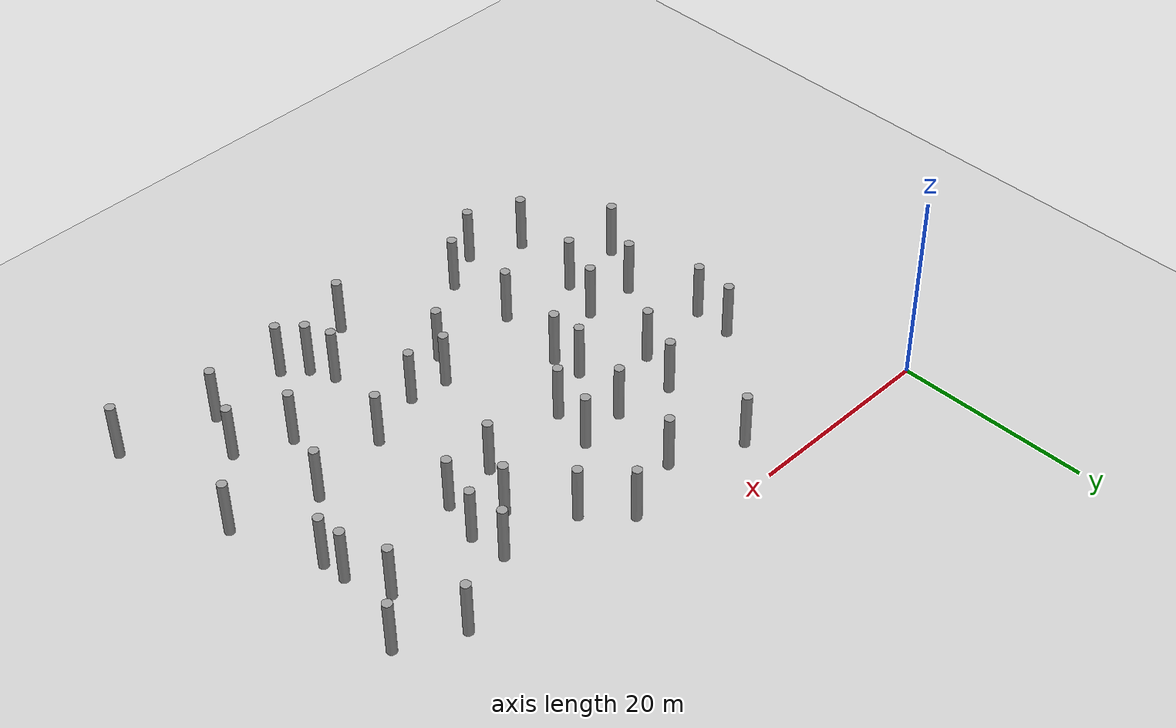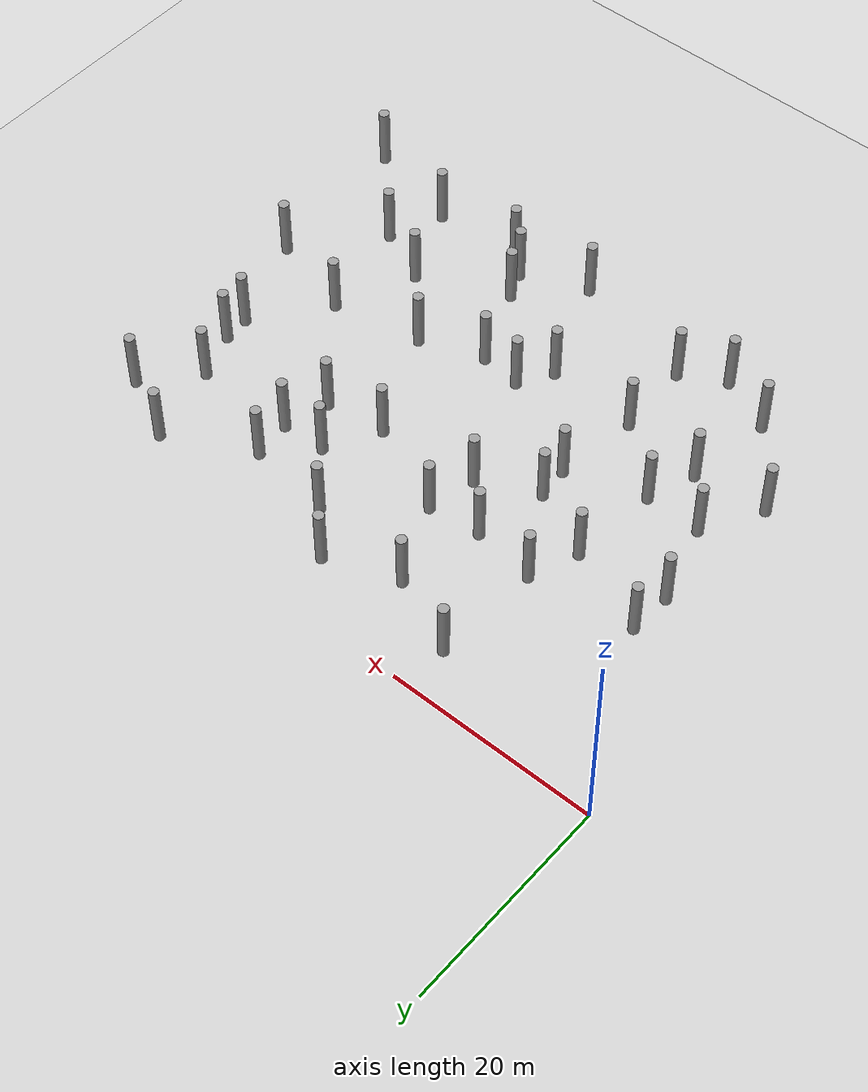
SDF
<sdf version="1.5">
 <world name="circle">
  <model name="ground">
   <static>1</static>
   <link name="link">
    <collision name="collision">
     <geometry><plane><normal>0 0 1</normal><size>100 100</size></plane></geometry>
     <surface><friction><ode><mu>100</mu><mu2>50</mu2></ode></friction></surface>
    </collision>
    <visual name="visual">
     <cast_shadows>0</cast_shadows>
     <geometry><plane><normal>0 0 1</normal><size>100 100</size></plane></geometry>
     <material>
      <script><uri>file://media/materials/scripts/gazebo.material</uri><name>Gazebo/Grey</name></script>
     </material>
    </visual>
    <velocity_decay><linear>0</linear><angular>0</angular></velocity_decay>
   </link>
  </model>
  <model name="unit_cylinder_0">
   <pose>12.6124145216 -40.3023331547 3 3e-06 4e-06 -0</pose>
   <static>1</static>
   <self_collide>1</self_collide>
   <link name="link">
    <inertial>
     <mass>1</mass>
     <inertia><ixx>0.145833</ixx><ixy>0</ixy><ixz>0</ixz><iyy>0.145833</iyy><iyz>0</iyz><izz>0.125</izz></inertia>
    </inertial>
    <collision name="collision">
     <geometry><cylinder><radius>0.5</radius><length>6</length></cylinder></geometry>
    </collision>
    <visual name="visual">
     <geometry><cylinder><radius>0.5</radius><length>6</length></cylinder></geometry>
     <material>
      <script><name>Gazebo/Grey</name><uri>file://media/materials/scripts/gazebo.material</uri></script>
     </material>
    </visual>
    <collision name="cyl_collision">
     <geometry><cylinder><radius>0.5</radius><length>6</length></cylinder></geometry>
    </collision>
    <sensor name="my_contact" type="contact">
     <contact><collision>cyl_collision</collision></contact>
     <update_rate>5</update_rate>
    </sensor>
   </link>
  </model>
  <model name="unit_cylinder_1">
   <pose>6.96128146057 -32.9465415072 3 3e-06 4e-06 -0</pose>
   <static>1</static>
   <self_collide>1</self_collide>
   <link name="link">
    <inertial>
     <mass>1</mass>
     <inertia><ixx>0.145833</ixx><ixy>0</ixy><ixz>0</ixz><iyy>0.145833</iyy><iyz>0</iyz><izz>0.125</izz></inertia>
    </inertial>
    <collision name="collision">
     <geometry><cylinder><radius>0.5</radius><length>6</length></cylinder></geometry>
    </collision>
    <visual name="visual">
     <geometry><cylinder><radius>0.5</radius><length>6</length></cylinder></geometry>
     <material>
      <script><name>Gazebo/Grey</name><uri>file://media/materials/scripts/gazebo.material</uri></script>
     </material>
    </visual>
    <collision name="cyl_collision">
     <geometry><cylinder><radius>0.5</radius><length>6</length></cylinder></geometry>
    </collision>
    <sensor name="my_contact" type="contact">
     <contact><collision>cyl_collision</collision></contact>
     <update_rate>5</update_rate>
    </sensor>
   </link>
  </model>
  <model name="unit_cylinder_2">
   <pose>10.0673096309 -27.51107133 3 3e-06 4e-06 -0</pose>
   <static>1</static>
   <self_collide>1</self_collide>
   <link name="link">
    <inertial>
     <mass>1</mass>
     <inertia><ixx>0.145833</ixx><ixy>0</ixy><ixz>0</ixz><iyy>0.145833</iyy><iyz>0</iyz><izz>0.125</izz></inertia>
    </inertial>
    <collision name="collision">
     <geometry><cylinder><radius>0.5</radius><length>6</length></cylinder></geometry>
    </collision>
    <visual name="visual">
     <geometry><cylinder><radius>0.5</radius><length>6</length></cylinder></geometry>
     <material>
      <script><name>Gazebo/Grey</name><uri>file://media/materials/scripts/gazebo.material</uri></script>
     </material>
    </visual>
    <collision name="cyl_collision">
     <geometry><cylinder><radius>0.5</radius><length>6</length></cylinder></geometry>
    </collision>
    <sensor name="my_contact" type="contact">
     <contact><collision>cyl_collision</collision></contact>
     <update_rate>5</update_rate>
    </sensor>
   </link>
  </model>
  <model name="unit_cylinder_3">
   <pose>7.85500372777 -20.1338937602 3 3e-06 4e-06 -0</pose>
   <static>1</static>
   <self_collide>1</self_collide>
   <link name="link">
    <inertial>
     <mass>1</mass>
     <inertia><ixx>0.145833</ixx><ixy>0</ixy><ixz>0</ixz><iyy>0.145833</iyy><iyz>0</iyz><izz>0.125</izz></inertia>
    </inertial>
    <collision name="collision">
     <geometry><cylinder><radius>0.5</radius><length>6</length></cylinder></geometry>
    </collision>
    <visual name="visual">
     <geometry><cylinder><radius>0.5</radius><length>6</length></cylinder></geometry>
     <material>
      <script><name>Gazebo/Grey</name><uri>file://media/materials/scripts/gazebo.material</uri></script>
     </material>
    </visual>
    <collision name="cyl_collision">
     <geometry><cylinder><radius>0.5</radius><length>6</length></cylinder></geometry>
    </collision>
    <sensor name="my_contact" type="contact">
     <contact><collision>cyl_collision</collision></contact>
     <update_rate>5</update_rate>
    </sensor>
   </link>
  </model>
  <model name="unit_cylinder_4">
   <pose>8.0691187414 -16.0641193641 3 3e-06 4e-06 -0</pose>
   <static>1</static>
   <self_collide>1</self_collide>
   <link name="link">
    <inertial>
     <mass>1</mass>
     <inertia><ixx>0.145833</ixx><ixy>0</ixy><ixz>0</ixz><iyy>0.145833</iyy><iyz>0</iyz><izz>0.125</izz></inertia>
    </inertial>
    <collision name="collision">
     <geometry><cylinder><radius>0.5</radius><length>6</length></cylinder></geometry>
    </collision>
    <visual name="visual">
     <geometry><cylinder><radius>0.5</radius><length>6</length></cylinder></geometry>
     <material>
      <script><name>Gazebo/Grey</name><uri>file://media/materials/scripts/gazebo.material</uri></script>
     </material>
    </visual>
    <collision name="cyl_collision">
     <geometry><cylinder><radius>0.5</radius><length>6</length></cylinder></geometry>
    </collision>
    <sensor name="my_contact" type="contact">
     <contact><collision>cyl_collision</collision></contact>
     <update_rate>5</update_rate>
    </sensor>
   </link>
  </model>
  <model name="unit_cylinder_12">
   <pose>17.7732628708 -42.5833735378 3 3e-06 4e-06 -0</pose>
   <static>1</static>
   <self_collide>1</self_collide>
   <link name="link">
    <inertial>
     <mass>1</mass>
     <inertia><ixx>0.145833</ixx><ixy>0</ixy><ixz>0</ixz><iyy>0.145833</iyy><iyz>0</iyz><izz>0.125</izz></inertia>
    </inertial>
    <collision name="collision">
     <geometry><cylinder><radius>0.5</radius><length>6</length></cylinder></geometry>
    </collision>
    <visual name="visual">
     <geometry><cylinder><radius>0.5</radius><length>6</length></cylinder></geometry>
     <material>
      <script><name>Gazebo/Grey</name><uri>file://media/materials/scripts/gazebo.material</uri></script>
     </material>
    </visual>
    <collision name="cyl_collision">
     <geometry><cylinder><radius>0.5</radius><length>6</length></cylinder></geometry>
    </collision>
    <sensor name="my_contact" type="contact">
     <contact><collision>cyl_collision</collision></contact>
     <update_rate>5</update_rate>
    </sensor>
   </link>
  </model>
  <model name="unit_cylinder_13">
   <pose>13.8132217243 -32.102792748 3 3e-06 4e-06 -0</pose>
   <static>1</static>
   <self_collide>1</self_collide>
   <link name="link">
    <inertial>
     <mass>1</mass>
     <inertia><ixx>0.145833</ixx><ixy>0</ixy><ixz>0</ixz><iyy>0.145833</iyy><iyz>0</iyz><izz>0.125</izz></inertia>
    </inertial>
    <collision name="collision">
     <geometry><cylinder><radius>0.5</radius><length>6</length></cylinder></geometry>
    </collision>
    <visual name="visual">
     <geometry><cylinder><radius>0.5</radius><length>6</length></cylinder></geometry>
     <material>
      <script><name>Gazebo/Grey</name><uri>file://media/materials/scripts/gazebo.material</uri></script>
     </material>
    </visual>
    <collision name="cyl_collision">
     <geometry><cylinder><radius>0.5</radius><length>6</length></cylinder></geometry>
    </collision>
    <sensor name="my_contact" type="contact">
     <contact><collision>cyl_collision</collision></contact>
     <update_rate>5</update_rate>
    </sensor>
   </link>
  </model>
  <model name="unit_cylinder_14">
   <pose>15.4106913323 -27.5746957721 3 3e-06 4e-06 -0</pose>
   <static>1</static>
   <self_collide>1</self_collide>
   <link name="link">
    <inertial>
     <mass>1</mass>
     <inertia><ixx>0.145833</ixx><ixy>0</ixy><ixz>0</ixz><iyy>0.145833</iyy><iyz>0</iyz><izz>0.125</izz></inertia>
    </inertial>
    <collision name="collision">
     <geometry><cylinder><radius>0.5</radius><length>6</length></cylinder></geometry>
    </collision>
    <visual name="visual">
     <geometry><cylinder><radius>0.5</radius><length>6</length></cylinder></geometry>
     <material>
      <script><name>Gazebo/Grey</name><uri>file://media/materials/scripts/gazebo.material</uri></script>
     </material>
    </visual>
    <collision name="cyl_collision">
     <geometry><cylinder><radius>0.5</radius><length>6</length></cylinder></geometry>
    </collision>
    <sensor name="my_contact" type="contact">
     <contact><collision>cyl_collision</collision></contact>
     <update_rate>5</update_rate>
    </sensor>
   </link>
  </model>
  <model name="unit_cylinder_15">
   <pose>16.1578896865 -19.113521778 3 3e-06 4e-06 -0</pose>
   <static>1</static>
   <self_collide>1</self_collide>
   <link name="link">
    <inertial>
     <mass>1</mass>
     <inertia><ixx>0.145833</ixx><ixy>0</ixy><ixz>0</ixz><iyy>0.145833</iyy><iyz>0</iyz><izz>0.125</izz></inertia>
    </inertial>
    <collision name="collision">
     <geometry><cylinder><radius>0.5</radius><length>6</length></cylinder></geometry>
    </collision>
    <visual name="visual">
     <geometry><cylinder><radius>0.5</radius><length>6</length></cylinder></geometry>
     <material>
      <script><name>Gazebo/Grey</name><uri>file://media/materials/scripts/gazebo.material</uri></script>
     </material>
    </visual>
    <collision name="cyl_collision">
     <geometry><cylinder><radius>0.5</radius><length>6</length></cylinder></geometry>
    </collision>
    <sensor name="my_contact" type="contact">
     <contact><collision>cyl_collision</collision></contact>
     <update_rate>5</update_rate>
    </sensor>
   </link>
  </model>
  <model name="unit_cylinder_16">
   <pose>17.9182829641 -14.5445670204 3 3e-06 4e-06 -0</pose>
   <static>1</static>
   <self_collide>1</self_collide>
   <link name="link">
    <inertial>
     <mass>1</mass>
     <inertia><ixx>0.145833</ixx><ixy>0</ixy><ixz>0</ixz><iyy>0.145833</iyy><iyz>0</iyz><izz>0.125</izz></inertia>
    </inertial>
    <collision name="collision">
     <geometry><cylinder><radius>0.5</radius><length>6</length></cylinder></geometry>
    </collision>
    <visual name="visual">
     <geometry><cylinder><radius>0.5</radius><length>6</length></cylinder></geometry>
     <material>
      <script><name>Gazebo/Grey</name><uri>file://media/materials/scripts/gazebo.material</uri></script>
     </material>
    </visual>
    <collision name="cyl_collision">
     <geometry><cylinder><radius>0.5</radius><length>6</length></cylinder></geometry>
    </collision>
    <sensor name="my_contact" type="contact">
     <contact><collision>cyl_collision</collision></contact>
     <update_rate>5</update_rate>
    </sensor>
   </link>
  </model>
  <model name="unit_cylinder_17">
   <pose>18.4843208202 -4.38847078077 3 3e-06 4e-06 -0</pose>
   <static>1</static>
   <self_collide>1</self_collide>
   <link name="link">
    <inertial>
     <mass>1</mass>
     <inertia><ixx>0.145833</ixx><ixy>0</ixy><ixz>0</ixz><iyy>0.145833</iyy><iyz>0</iyz><izz>0.125</izz></inertia>
    </inertial>
    <collision name="collision">
     <geometry><cylinder><radius>0.5</radius><length>6</length></cylinder></geometry>
    </collision>
    <visual name="visual">
     <geometry><cylinder><radius>0.5</radius><length>6</length></cylinder></geometry>
     <material>
      <script><name>Gazebo/Grey</name><uri>file://media/materials/scripts/gazebo.material</uri></script>
     </material>
    </visual>
    <collision name="cyl_collision">
     <geometry><cylinder><radius>0.5</radius><length>6</length></cylinder></geometry>
    </collision>
    <sensor name="my_contact" type="contact">
     <contact><collision>cyl_collision</collision></contact>
     <update_rate>5</update_rate>
    </sensor>
   </link>
  </model>
  <model name="unit_cylinder_24">
   <pose>21.9065971351 -40.3572031227 3 3e-06 4e-06 -0</pose>
   <static>1</static>
   <self_collide>1</self_collide>
   <link name="link">
    <inertial>
     <mass>1</mass>
     <inertia><ixx>0.145833</ixx><ixy>0</ixy><ixz>0</ixz><iyy>0.145833</iyy><iyz>0</iyz><izz>0.125</izz></inertia>
    </inertial>
    <collision name="collision">
     <geometry><cylinder><radius>0.5</radius><length>6</length></cylinder></geometry>
    </collision>
    <visual name="visual">
     <geometry><cylinder><radius>0.5</radius><length>6</length></cylinder></geometry>
     <material>
      <script><name>Gazebo/Grey</name><uri>file://media/materials/scripts/gazebo.material</uri></script>
     </material>
    </visual>
    <collision name="cyl_collision">
     <geometry><cylinder><radius>0.5</radius><length>6</length></cylinder></geometry>
    </collision>
    <sensor name="my_contact" type="contact">
     <contact><collision>cyl_collision</collision></contact>
     <update_rate>5</update_rate>
    </sensor>
   </link>
  </model>
  <model name="unit_cylinder_25">
   <pose>21.5926735893 -33.0451283074 3 3e-06 4e-06 -0</pose>
   <static>1</static>
   <self_collide>1</self_collide>
   <link name="link">
    <inertial>
     <mass>1</mass>
     <inertia><ixx>0.145833</ixx><ixy>0</ixy><ixz>0</ixz><iyy>0.145833</iyy><iyz>0</iyz><izz>0.125</izz></inertia>
    </inertial>
    <collision name="collision">
     <geometry><cylinder><radius>0.5</radius><length>6</length></cylinder></geometry>
    </collision>
    <visual name="visual">
     <geometry><cylinder><radius>0.5</radius><length>6</length></cylinder></geometry>
     <material>
      <script><name>Gazebo/Grey</name><uri>file://media/materials/scripts/gazebo.material</uri></script>
     </material>
    </visual>
    <collision name="cyl_collision">
     <geometry><cylinder><radius>0.5</radius><length>6</length></cylinder></geometry>
    </collision>
    <sensor name="my_contact" type="contact">
     <contact><collision>cyl_collision</collision></contact>
     <update_rate>5</update_rate>
    </sensor>
   </link>
  </model>
  <model name="unit_cylinder_26">
   <pose>22.7206121784 -25.1614234946 3 3e-06 4e-06 -0</pose>
   <static>1</static>
   <self_collide>1</self_collide>
   <link name="link">
    <inertial>
     <mass>1</mass>
     <inertia><ixx>0.145833</ixx><ixy>0</ixy><ixz>0</ixz><iyy>0.145833</iyy><iyz>0</iyz><izz>0.125</izz></inertia>
    </inertial>
    <collision name="collision">
     <geometry><cylinder><radius>0.5</radius><length>6</length></cylinder></geometry>
    </collision>
    <visual name="visual">
     <geometry><cylinder><radius>0.5</radius><length>6</length></cylinder></geometry>
     <material>
      <script><name>Gazebo/Grey</name><uri>file://media/materials/scripts/gazebo.material</uri></script>
     </material>
    </visual>
    <collision name="cyl_collision">
     <geometry><cylinder><radius>0.5</radius><length>6</length></cylinder></geometry>
    </collision>
    <sensor name="my_contact" type="contact">
     <contact><collision>cyl_collision</collision></contact>
     <update_rate>5</update_rate>
    </sensor>
   </link>
  </model>
  <model name="unit_cylinder_27">
   <pose>22.4219778398 -22.0793265807 3 3e-06 4e-06 -0</pose>
   <static>1</static>
   <self_collide>1</self_collide>
   <link name="link">
    <inertial>
     <mass>1</mass>
     <inertia><ixx>0.145833</ixx><ixy>0</ixy><ixz>0</ixz><iyy>0.145833</iyy><iyz>0</iyz><izz>0.125</izz></inertia>
    </inertial>
    <collision name="collision">
     <geometry><cylinder><radius>0.5</radius><length>6</length></cylinder></geometry>
    </collision>
    <visual name="visual">
     <geometry><cylinder><radius>0.5</radius><length>6</length></cylinder></geometry>
     <material>
      <script><name>Gazebo/Grey</name><uri>file://media/materials/scripts/gazebo.material</uri></script>
     </material>
    </visual>
    <collision name="cyl_collision">
     <geometry><cylinder><radius>0.5</radius><length>6</length></cylinder></geometry>
    </collision>
    <sensor name="my_contact" type="contact">
     <contact><collision>cyl_collision</collision></contact>
     <update_rate>5</update_rate>
    </sensor>
   </link>
  </model>
  <model name="unit_cylinder_28">
   <pose>23.8886145601 -15.3643983245 3 3e-06 4e-06 -0</pose>
   <static>1</static>
   <self_collide>1</self_collide>
   <link name="link">
    <inertial>
     <mass>1</mass>
     <inertia><ixx>0.145833</ixx><ixy>0</ixy><ixz>0</ixz><iyy>0.145833</iyy><iyz>0</iyz><izz>0.125</izz></inertia>
    </inertial>
    <collision name="collision">
     <geometry><cylinder><radius>0.5</radius><length>6</length></cylinder></geometry>
    </collision>
    <visual name="visual">
     <geometry><cylinder><radius>0.5</radius><length>6</length></cylinder></geometry>
     <material>
      <script><name>Gazebo/Grey</name><uri>file://media/materials/scripts/gazebo.material</uri></script>
     </material>
    </visual>
    <collision name="cyl_collision">
     <geometry><cylinder><radius>0.5</radius><length>6</length></cylinder></geometry>
    </collision>
    <sensor name="my_contact" type="contact">
     <contact><collision>cyl_collision</collision></contact>
     <update_rate>5</update_rate>
    </sensor>
   </link>
  </model>
  <model name="unit_cylinder_29">
   <pose>25.5359010917 -7.43061325953 3 3e-06 4e-06 -0</pose>
   <static>1</static>
   <self_collide>1</self_collide>
   <link name="link">
    <inertial>
     <mass>1</mass>
     <inertia><ixx>0.145833</ixx><ixy>0</ixy><ixz>0</ixz><iyy>0.145833</iyy><iyz>0</iyz><izz>0.125</izz></inertia>
    </inertial>
    <collision name="collision">
     <geometry><cylinder><radius>0.5</radius><length>6</length></cylinder></geometry>
    </collision>
    <visual name="visual">
     <geometry><cylinder><radius>0.5</radius><length>6</length></cylinder></geometry>
     <material>
      <script><name>Gazebo/Grey</name><uri>file://media/materials/scripts/gazebo.material</uri></script>
     </material>
    </visual>
    <collision name="cyl_collision">
     <geometry><cylinder><radius>0.5</radius><length>6</length></cylinder></geometry>
    </collision>
    <sensor name="my_contact" type="contact">
     <contact><collision>cyl_collision</collision></contact>
     <update_rate>5</update_rate>
    </sensor>
   </link>
  </model>
  <model name="unit_cylinder_36">
   <pose>34.1373962909 -43.4308068762 3 3e-06 4e-06 -0</pose>
   <static>1</static>
   <self_collide>1</self_collide>
   <link name="link">
    <inertial>
     <mass>1</mass>
     <inertia><ixx>0.145833</ixx><ixy>0</ixy><ixz>0</ixz><iyy>0.145833</iyy><iyz>0</iyz><izz>0.125</izz></inertia>
    </inertial>
    <collision name="collision">
     <geometry><cylinder><radius>0.5</radius><length>6</length></cylinder></geometry>
    </collision>
    <visual name="visual">
     <geometry><cylinder><radius>0.5</radius><length>6</length></cylinder></geometry>
     <material>
      <script><name>Gazebo/Grey</name><uri>file://media/materials/scripts/gazebo.material</uri></script>
     </material>
    </visual>
    <collision name="cyl_collision">
     <geometry><cylinder><radius>0.5</radius><length>6</length></cylinder></geometry>
    </collision>
    <sensor name="my_contact" type="contact">
     <contact><collision>cyl_collision</collision></contact>
     <update_rate>5</update_rate>
    </sensor>
   </link>
  </model>
  <model name="unit_cylinder_37">
   <pose>30.2342891506 -33.4831192548 3 3e-06 4e-06 -0</pose>
   <static>1</static>
   <self_collide>1</self_collide>
   <link name="link">
    <inertial>
     <mass>1</mass>
     <inertia><ixx>0.145833</ixx><ixy>0</ixy><ixz>0</ixz><iyy>0.145833</iyy><iyz>0</iyz><izz>0.125</izz></inertia>
    </inertial>
    <collision name="collision">
     <geometry><cylinder><radius>0.5</radius><length>6</length></cylinder></geometry>
    </collision>
    <visual name="visual">
     <geometry><cylinder><radius>0.5</radius><length>6</length></cylinder></geometry>
     <material>
      <script><name>Gazebo/Grey</name><uri>file://media/materials/scripts/gazebo.material</uri></script>
     </material>
    </visual>
    <collision name="cyl_collision">
     <geometry><cylinder><radius>0.5</radius><length>6</length></cylinder></geometry>
    </collision>
    <sensor name="my_contact" type="contact">
     <contact><collision>cyl_collision</collision></contact>
     <update_rate>5</update_rate>
    </sensor>
   </link>
  </model>
  <model name="unit_cylinder_38">
   <pose>32.1514204454 -30.3629129867 3 3e-06 4e-06 -0</pose>
   <static>1</static>
   <self_collide>1</self_collide>
   <link name="link">
    <inertial>
     <mass>1</mass>
     <inertia><ixx>0.145833</ixx><ixy>0</ixy><ixz>0</ixz><iyy>0.145833</iyy><iyz>0</iyz><izz>0.125</izz></inertia>
    </inertial>
    <collision name="collision">
     <geometry><cylinder><radius>0.5</radius><length>6</length></cylinder></geometry>
    </collision>
    <visual name="visual">
     <geometry><cylinder><radius>0.5</radius><length>6</length></cylinder></geometry>
     <material>
      <script><name>Gazebo/Grey</name><uri>file://media/materials/scripts/gazebo.material</uri></script>
     </material>
    </visual>
    <collision name="cyl_collision">
     <geometry><cylinder><radius>0.5</radius><length>6</length></cylinder></geometry>
    </collision>
    <sensor name="my_contact" type="contact">
     <contact><collision>cyl_collision</collision></contact>
     <update_rate>5</update_rate>
    </sensor>
   </link>
  </model>
  <model name="unit_cylinder_39">
   <pose>27.8642569535 -19.4129540567 3 3e-06 4e-06 -0</pose>
   <static>1</static>
   <self_collide>1</self_collide>
   <link name="link">
    <inertial>
     <mass>1</mass>
     <inertia><ixx>0.145833</ixx><ixy>0</ixy><ixz>0</ixz><iyy>0.145833</iyy><iyz>0</iyz><izz>0.125</izz></inertia>
    </inertial>
    <collision name="collision">
     <geometry><cylinder><radius>0.5</radius><length>6</length></cylinder></geometry>
    </collision>
    <visual name="visual">
     <geometry><cylinder><radius>0.5</radius><length>6</length></cylinder></geometry>
     <material>
      <script><name>Gazebo/Grey</name><uri>file://media/materials/scripts/gazebo.material</uri></script>
     </material>
    </visual>
    <collision name="cyl_collision">
     <geometry><cylinder><radius>0.5</radius><length>6</length></cylinder></geometry>
    </collision>
    <sensor name="my_contact" type="contact">
     <contact><collision>cyl_collision</collision></contact>
     <update_rate>5</update_rate>
    </sensor>
   </link>
  </model>
  <model name="unit_cylinder_40">
   <pose>28.870065888 -14.7826463186 3 3e-06 4e-06 -0</pose>
   <static>1</static>
   <self_collide>1</self_collide>
   <link name="link">
    <inertial>
     <mass>1</mass>
     <inertia><ixx>0.145833</ixx><ixy>0</ixy><ixz>0</ixz><iyy>0.145833</iyy><iyz>0</iyz><izz>0.125</izz></inertia>
    </inertial>
    <collision name="collision">
     <geometry><cylinder><radius>0.5</radius><length>6</length></cylinder></geometry>
    </collision>
    <visual name="visual">
     <geometry><cylinder><radius>0.5</radius><length>6</length></cylinder></geometry>
     <material>
      <script><name>Gazebo/Grey</name><uri>file://media/materials/scripts/gazebo.material</uri></script>
     </material>
    </visual>
    <collision name="cyl_collision">
     <geometry><cylinder><radius>0.5</radius><length>6</length></cylinder></geometry>
    </collision>
    <sensor name="my_contact" type="contact">
     <contact><collision>cyl_collision</collision></contact>
     <update_rate>5</update_rate>
    </sensor>
   </link>
  </model>
  <model name="unit_cylinder_41">
   <pose>32.3108665527 -4.94031563436 3 3e-06 4e-06 -0</pose>
   <static>1</static>
   <self_collide>1</self_collide>
   <link name="link">
    <inertial>
     <mass>1</mass>
     <inertia><ixx>0.145833</ixx><ixy>0</ixy><ixz>0</ixz><iyy>0.145833</iyy><iyz>0</iyz><izz>0.125</izz></inertia>
    </inertial>
    <collision name="collision">
     <geometry><cylinder><radius>0.5</radius><length>6</length></cylinder></geometry>
    </collision>
    <visual name="visual">
     <geometry><cylinder><radius>0.5</radius><length>6</length></cylinder></geometry>
     <material>
      <script><name>Gazebo/Grey</name><uri>file://media/materials/scripts/gazebo.material</uri></script>
     </material>
    </visual>
    <collision name="cyl_collision">
     <geometry><cylinder><radius>0.5</radius><length>6</length></cylinder></geometry>
    </collision>
    <sensor name="my_contact" type="contact">
     <contact><collision>cyl_collision</collision></contact>
     <update_rate>5</update_rate>
    </sensor>
   </link>
  </model>
  <model name="unit_cylinder_48">
   <pose>40.2667223129 -40.781377859 3 3e-06 4e-06 -0</pose>
   <static>1</static>
   <self_collide>1</self_collide>
   <link name="link">
    <inertial>
     <mass>1</mass>
     <inertia><ixx>0.145833</ixx><ixy>0</ixy><ixz>0</ixz><iyy>0.145833</iyy><iyz>0</iyz><izz>0.125</izz></inertia>
    </inertial>
    <collision name="collision">
     <geometry><cylinder><radius>0.5</radius><length>6</length></cylinder></geometry>
    </collision>
    <visual name="visual">
     <geometry><cylinder><radius>0.5</radius><length>6</length></cylinder></geometry>
     <material>
      <script><name>Gazebo/Grey</name><uri>file://media/materials/scripts/gazebo.material</uri></script>
     </material>
    </visual>
    <collision name="cyl_collision">
     <geometry><cylinder><radius>0.5</radius><length>6</length></cylinder></geometry>
    </collision>
    <sensor name="my_contact" type="contact">
     <contact><collision>cyl_collision</collision></contact>
     <update_rate>5</update_rate>
    </sensor>
   </link>
  </model>
  <model name="unit_cylinder_49">
   <pose>39.2152993669 -38.2430716137 3 3e-06 4e-06 -0</pose>
   <static>1</static>
   <self_collide>1</self_collide>
   <link name="link">
    <inertial>
     <mass>1</mass>
     <inertia><ixx>0.145833</ixx><ixy>0</ixy><ixz>0</ixz><iyy>0.145833</iyy><iyz>0</iyz><izz>0.125</izz></inertia>
    </inertial>
    <collision name="collision">
     <geometry><cylinder><radius>0.5</radius><length>6</length></cylinder></geometry>
    </collision>
    <visual name="visual">
     <geometry><cylinder><radius>0.5</radius><length>6</length></cylinder></geometry>
     <material>
      <script><name>Gazebo/Grey</name><uri>file://media/materials/scripts/gazebo.material</uri></script>
     </material>
    </visual>
    <collision name="cyl_collision">
     <geometry><cylinder><radius>0.5</radius><length>6</length></cylinder></geometry>
    </collision>
    <sensor name="my_contact" type="contact">
     <contact><collision>cyl_collision</collision></contact>
     <update_rate>5</update_rate>
    </sensor>
   </link>
  </model>
  <model name="unit_cylinder_50">
   <pose>36.08616828 -30.8302114602 3 3e-06 4e-06 -0</pose>
   <static>1</static>
   <self_collide>1</self_collide>
   <link name="link">
    <inertial>
     <mass>1</mass>
     <inertia><ixx>0.145833</ixx><ixy>0</ixy><ixz>0</ixz><iyy>0.145833</iyy><iyz>0</iyz><izz>0.125</izz></inertia>
    </inertial>
    <collision name="collision">
     <geometry><cylinder><radius>0.5</radius><length>6</length></cylinder></geometry>
    </collision>
    <visual name="visual">
     <geometry><cylinder><radius>0.5</radius><length>6</length></cylinder></geometry>
     <material>
      <script><name>Gazebo/Grey</name><uri>file://media/materials/scripts/gazebo.material</uri></script>
     </material>
    </visual>
    <collision name="cyl_collision">
     <geometry><cylinder><radius>0.5</radius><length>6</length></cylinder></geometry>
    </collision>
    <sensor name="my_contact" type="contact">
     <contact><collision>cyl_collision</collision></contact>
     <update_rate>5</update_rate>
    </sensor>
   </link>
  </model>
  <model name="unit_cylinder_51">
   <pose>37.4538972749 -18.5958126966 3 3e-06 4e-06 -0</pose>
   <static>1</static>
   <self_collide>1</self_collide>
   <link name="link">
    <inertial>
     <mass>1</mass>
     <inertia><ixx>0.145833</ixx><ixy>0</ixy><ixz>0</ixz><iyy>0.145833</iyy><iyz>0</iyz><izz>0.125</izz></inertia>
    </inertial>
    <collision name="collision">
     <geometry><cylinder><radius>0.5</radius><length>6</length></cylinder></geometry>
    </collision>
    <visual name="visual">
     <geometry><cylinder><radius>0.5</radius><length>6</length></cylinder></geometry>
     <material>
      <script><name>Gazebo/Grey</name><uri>file://media/materials/scripts/gazebo.material</uri></script>
     </material>
    </visual>
    <collision name="cyl_collision">
     <geometry><cylinder><radius>0.5</radius><length>6</length></cylinder></geometry>
    </collision>
    <sensor name="my_contact" type="contact">
     <contact><collision>cyl_collision</collision></contact>
     <update_rate>5</update_rate>
    </sensor>
   </link>
  </model>
  <model name="unit_cylinder_52">
   <pose>40.1693962253 -13.7118214169 3 3e-06 4e-06 -0</pose>
   <static>1</static>
   <self_collide>1</self_collide>
   <link name="link">
    <inertial>
     <mass>1</mass>
     <inertia><ixx>0.145833</ixx><ixy>0</ixy><ixz>0</ixz><iyy>0.145833</iyy><iyz>0</iyz><izz>0.125</izz></inertia>
    </inertial>
    <collision name="collision">
     <geometry><cylinder><radius>0.5</radius><length>6</length></cylinder></geometry>
    </collision>
    <visual name="visual">
     <geometry><cylinder><radius>0.5</radius><length>6</length></cylinder></geometry>
     <material>
      <script><name>Gazebo/Grey</name><uri>file://media/materials/scripts/gazebo.material</uri></script>
     </material>
    </visual>
    <collision name="cyl_collision">
     <geometry><cylinder><radius>0.5</radius><length>6</length></cylinder></geometry>
    </collision>
    <sensor name="my_contact" type="contact">
     <contact><collision>cyl_collision</collision></contact>
     <update_rate>5</update_rate>
    </sensor>
   </link>
  </model>
  <model name="unit_cylinder_53">
   <pose>35.9366397154 -8.71084765176 3 3e-06 4e-06 -0</pose>
   <static>1</static>
   <self_collide>1</self_collide>
   <link name="link">
    <inertial>
     <mass>1</mass>
     <inertia><ixx>0.145833</ixx><ixy>0</ixy><ixz>0</ixz><iyy>0.145833</iyy><iyz>0</iyz><izz>0.125</izz></inertia>
    </inertial>
    <collision name="collision">
     <geometry><cylinder><radius>0.5</radius><length>6</length></cylinder></geometry>
    </collision>
    <visual name="visual">
     <geometry><cylinder><radius>0.5</radius><length>6</length></cylinder></geometry>
     <material>
      <script><name>Gazebo/Grey</name><uri>file://media/materials/scripts/gazebo.material</uri></script>
     </material>
    </visual>
    <collision name="cyl_collision">
     <geometry><cylinder><radius>0.5</radius><length>6</length></cylinder></geometry>
    </collision>
    <sensor name="my_contact" type="contact">
     <contact><collision>cyl_collision</collision></contact>
     <update_rate>5</update_rate>
    </sensor>
   </link>
  </model>
  <model name="unit_cylinder_60">
   <pose>42.3448391239 -42.6732786154 3 3e-06 4e-06 -0</pose>
   <static>1</static>
   <self_collide>1</self_collide>
   <link name="link">
    <inertial>
     <mass>1</mass>
     <inertia><ixx>0.145833</ixx><ixy>0</ixy><ixz>0</ixz><iyy>0.145833</iyy><iyz>0</iyz><izz>0.125</izz></inertia>
    </inertial>
    <collision name="collision">
     <geometry><cylinder><radius>0.5</radius><length>6</length></cylinder></geometry>
    </collision>
    <visual name="visual">
     <geometry><cylinder><radius>0.5</radius><length>6</length></cylinder></geometry>
     <material>
      <script><name>Gazebo/Grey</name><uri>file://media/materials/scripts/gazebo.material</uri></script>
     </material>
    </visual>
    <collision name="cyl_collision">
     <geometry><cylinder><radius>0.5</radius><length>6</length></cylinder></geometry>
    </collision>
    <sensor name="my_contact" type="contact">
     <contact><collision>cyl_collision</collision></contact>
     <update_rate>5</update_rate>
    </sensor>
   </link>
  </model>
  <model name="unit_cylinder_61">
   <pose>47.4288834623 -34.4583488428 3 3e-06 4e-06 -0</pose>
   <static>1</static>
   <self_collide>1</self_collide>
   <link name="link">
    <inertial>
     <mass>1</mass>
     <inertia><ixx>0.145833</ixx><ixy>0</ixy><ixz>0</ixz><iyy>0.145833</iyy><iyz>0</iyz><izz>0.125</izz></inertia>
    </inertial>
    <collision name="collision">
     <geometry><cylinder><radius>0.5</radius><length>6</length></cylinder></geometry>
    </collision>
    <visual name="visual">
     <geometry><cylinder><radius>0.5</radius><length>6</length></cylinder></geometry>
     <material>
      <script><name>Gazebo/Grey</name><uri>file://media/materials/scripts/gazebo.material</uri></script>
     </material>
    </visual>
    <collision name="cyl_collision">
     <geometry><cylinder><radius>0.5</radius><length>6</length></cylinder></geometry>
    </collision>
    <sensor name="my_contact" type="contact">
     <contact><collision>cyl_collision</collision></contact>
     <update_rate>5</update_rate>
    </sensor>
   </link>
  </model>
  <model name="unit_cylinder_62">
   <pose>42.0397522154 -28.6660122929 3 3e-06 4e-06 -0</pose>
   <static>1</static>
   <self_collide>1</self_collide>
   <link name="link">
    <inertial>
     <mass>1</mass>
     <inertia><ixx>0.145833</ixx><ixy>0</ixy><ixz>0</ixz><iyy>0.145833</iyy><iyz>0</iyz><izz>0.125</izz></inertia>
    </inertial>
    <collision name="collision">
     <geometry><cylinder><radius>0.5</radius><length>6</length></cylinder></geometry>
    </collision>
    <visual name="visual">
     <geometry><cylinder><radius>0.5</radius><length>6</length></cylinder></geometry>
     <material>
      <script><name>Gazebo/Grey</name><uri>file://media/materials/scripts/gazebo.material</uri></script>
     </material>
    </visual>
    <collision name="cyl_collision">
     <geometry><cylinder><radius>0.5</radius><length>6</length></cylinder></geometry>
    </collision>
    <sensor name="my_contact" type="contact">
     <contact><collision>cyl_collision</collision></contact>
     <update_rate>5</update_rate>
    </sensor>
   </link>
  </model>
  <model name="unit_cylinder_63">
   <pose>43.1494345154 -17.8081513059 3 3e-06 4e-06 -0</pose>
   <static>1</static>
   <self_collide>1</self_collide>
   <link name="link">
    <inertial>
     <mass>1</mass>
     <inertia><ixx>0.145833</ixx><ixy>0</ixy><ixz>0</ixz><iyy>0.145833</iyy><iyz>0</iyz><izz>0.125</izz></inertia>
    </inertial>
    <collision name="collision">
     <geometry><cylinder><radius>0.5</radius><length>6</length></cylinder></geometry>
    </collision>
    <visual name="visual">
     <geometry><cylinder><radius>0.5</radius><length>6</length></cylinder></geometry>
     <material>
      <script><name>Gazebo/Grey</name><uri>file://media/materials/scripts/gazebo.material</uri></script>
     </material>
    </visual>
    <collision name="cyl_collision">
     <geometry><cylinder><radius>0.5</radius><length>6</length></cylinder></geometry>
    </collision>
    <sensor name="my_contact" type="contact">
     <contact><collision>cyl_collision</collision></contact>
     <update_rate>5</update_rate>
    </sensor>
   </link>
  </model>
  <model name="unit_cylinder_64">
   <pose>44.357723956 -13.5191149346 3 3e-06 4e-06 -0</pose>
   <static>1</static>
   <self_collide>1</self_collide>
   <link name="link">
    <inertial>
     <mass>1</mass>
     <inertia><ixx>0.145833</ixx><ixy>0</ixy><ixz>0</ixz><iyy>0.145833</iyy><iyz>0</iyz><izz>0.125</izz></inertia>
    </inertial>
    <collision name="collision">
     <geometry><cylinder><radius>0.5</radius><length>6</length></cylinder></geometry>
    </collision>
    <visual name="visual">
     <geometry><cylinder><radius>0.5</radius><length>6</length></cylinder></geometry>
     <material>
      <script><name>Gazebo/Grey</name><uri>file://media/materials/scripts/gazebo.material</uri></script>
     </material>
    </visual>
    <collision name="cyl_collision">
     <geometry><cylinder><radius>0.5</radius><length>6</length></cylinder></geometry>
    </collision>
    <sensor name="my_contact" type="contact">
     <contact><collision>cyl_collision</collision></contact>
     <update_rate>5</update_rate>
    </sensor>
   </link>
  </model>
  <model name="unit_cylinder_65">
   <pose>43.9413826553 -9.79937994648 3 3e-06 4e-06 -0</pose>
   <static>1</static>
   <self_collide>1</self_collide>
   <link name="link">
    <inertial>
     <mass>1</mass>
     <inertia><ixx>0.145833</ixx><ixy>0</ixy><ixz>0</ixz><iyy>0.145833</iyy><iyz>0</iyz><izz>0.125</izz></inertia>
    </inertial>
    <collision name="collision">
     <geometry><cylinder><radius>0.5</radius><length>6</length></cylinder></geometry>
    </collision>
    <visual name="visual">
     <geometry><cylinder><radius>0.5</radius><length>6</length></cylinder></geometry>
     <material>
      <script><name>Gazebo/Grey</name><uri>file://media/materials/scripts/gazebo.material</uri></script>
     </material>
    </visual>
    <collision name="cyl_collision">
     <geometry><cylinder><radius>0.5</radius><length>6</length></cylinder></geometry>
    </collision>
    <sensor name="my_contact" type="contact">
     <contact><collision>cyl_collision</collision></contact>
     <update_rate>5</update_rate>
    </sensor>
   </link>
  </model>
  <model name="unit_cylinder_72">
   <pose>50.5746977226 -41.9604860363 3 3e-06 4e-06 -0</pose>
   <static>1</static>
   <self_collide>1</self_collide>
   <link name="link">
    <inertial>
     <mass>1</mass>
     <inertia><ixx>0.145833</ixx><ixy>0</ixy><ixz>0</ixz><iyy>0.145833</iyy><iyz>0</iyz><izz>0.125</izz></inertia>
    </inertial>
    <collision name="collision">
     <geometry><cylinder><radius>0.5</radius><length>6</length></cylinder></geometry>
    </collision>
    <visual name="visual">
     <geometry><cylinder><radius>0.5</radius><length>6</length></cylinder></geometry>
     <material>
      <script><name>Gazebo/Grey</name><uri>file://media/materials/scripts/gazebo.material</uri></script>
     </material>
    </visual>
    <collision name="cyl_collision">
     <geometry><cylinder><radius>0.5</radius><length>6</length></cylinder></geometry>
    </collision>
    <sensor name="my_contact" type="contact">
     <contact><collision>cyl_collision</collision></contact>
     <update_rate>5</update_rate>
    </sensor>
   </link>
  </model>
  <model name="unit_cylinder_73">
   <pose>52.6402832886 -36.8514810026 3 3e-06 4e-06 -0</pose>
   <static>1</static>
   <self_collide>1</self_collide>
   <link name="link">
    <inertial>
     <mass>1</mass>
     <inertia><ixx>0.145833</ixx><ixy>0</ixy><ixz>0</ixz><iyy>0.145833</iyy><iyz>0</iyz><izz>0.125</izz></inertia>
    </inertial>
    <collision name="collision">
     <geometry><cylinder><radius>0.5</radius><length>6</length></cylinder></geometry>
    </collision>
    <visual name="visual">
     <geometry><cylinder><radius>0.5</radius><length>6</length></cylinder></geometry>
     <material>
      <script><name>Gazebo/Grey</name><uri>file://media/materials/scripts/gazebo.material</uri></script>
     </material>
    </visual>
    <collision name="cyl_collision">
     <geometry><cylinder><radius>0.5</radius><length>6</length></cylinder></geometry>
    </collision>
    <sensor name="my_contact" type="contact">
     <contact><collision>cyl_collision</collision></contact>
     <update_rate>5</update_rate>
    </sensor>
   </link>
  </model>
  <model name="unit_cylinder_74">
   <pose>50.5895875842 -26.9990135252 3 3e-06 4e-06 -0</pose>
   <static>1</static>
   <self_collide>1</self_collide>
   <link name="link">
    <inertial>
     <mass>1</mass>
     <inertia><ixx>0.145833</ixx><ixy>0</ixy><ixz>0</ixz><iyy>0.145833</iyy><iyz>0</iyz><izz>0.125</izz></inertia>
    </inertial>
    <collision name="collision">
     <geometry><cylinder><radius>0.5</radius><length>6</length></cylinder></geometry>
    </collision>
    <visual name="visual">
     <geometry><cylinder><radius>0.5</radius><length>6</length></cylinder></geometry>
     <material>
      <script><name>Gazebo/Grey</name><uri>file://media/materials/scripts/gazebo.material</uri></script>
     </material>
    </visual>
    <collision name="cyl_collision">
     <geometry><cylinder><radius>0.5</radius><length>6</length></cylinder></geometry>
    </collision>
    <sensor name="my_contact" type="contact">
     <contact><collision>cyl_collision</collision></contact>
     <update_rate>5</update_rate>
    </sensor>
   </link>
  </model>
  <model name="unit_cylinder_75">
   <pose>55.4089810244 -17.8226837428 3 3e-06 4e-06 -0</pose>
   <static>1</static>
   <self_collide>1</self_collide>
   <link name="link">
    <inertial>
     <mass>1</mass>
     <inertia><ixx>0.145833</ixx><ixy>0</ixy><ixz>0</ixz><iyy>0.145833</iyy><iyz>0</iyz><izz>0.125</izz></inertia>
    </inertial>
    <collision name="collision">
     <geometry><cylinder><radius>0.5</radius><length>6</length></cylinder></geometry>
    </collision>
    <visual name="visual">
     <geometry><cylinder><radius>0.5</radius><length>6</length></cylinder></geometry>
     <material>
      <script><name>Gazebo/Grey</name><uri>file://media/materials/scripts/gazebo.material</uri></script>
     </material>
    </visual>
    <collision name="cyl_collision">
     <geometry><cylinder><radius>0.5</radius><length>6</length></cylinder></geometry>
    </collision>
    <sensor name="my_contact" type="contact">
     <contact><collision>cyl_collision</collision></contact>
     <update_rate>5</update_rate>
    </sensor>
   </link>
  </model>
  <model name="unit_cylinder_76">
   <pose>53.8107248253 -13.4394675396 3 3e-06 4e-06 -0</pose>
   <static>1</static>
   <self_collide>1</self_collide>
   <link name="link">
    <inertial>
     <mass>1</mass>
     <inertia><ixx>0.145833</ixx><ixy>0</ixy><ixz>0</ixz><iyy>0.145833</iyy><iyz>0</iyz><izz>0.125</izz></inertia>
    </inertial>
    <collision name="collision">
     <geometry><cylinder><radius>0.5</radius><length>6</length></cylinder></geometry>
    </collision>
    <visual name="visual">
     <geometry><cylinder><radius>0.5</radius><length>6</length></cylinder></geometry>
     <material>
      <script><name>Gazebo/Grey</name><uri>file://media/materials/scripts/gazebo.material</uri></script>
     </material>
    </visual>
    <collision name="cyl_collision">
     <geometry><cylinder><radius>0.5</radius><length>6</length></cylinder></geometry>
    </collision>
    <sensor name="my_contact" type="contact">
     <contact><collision>cyl_collision</collision></contact>
     <update_rate>5</update_rate>
    </sensor>
   </link>
  </model>
  <model name="unit_cylinder_77">
   <pose>51.9731927865 -5.70902488436 3 3e-06 4e-06 -0</pose>
   <static>1</static>
   <self_collide>1</self_collide>
   <link name="link">
    <inertial>
     <mass>1</mass>
     <inertia><ixx>0.145833</ixx><ixy>0</ixy><ixz>0</ixz><iyy>0.145833</iyy><iyz>0</iyz><izz>0.125</izz></inertia>
    </inertial>
    <collision name="collision">
     <geometry><cylinder><radius>0.5</radius><length>6</length></cylinder></geometry>
    </collision>
    <visual name="visual">
     <geometry><cylinder><radius>0.5</radius><length>6</length></cylinder></geometry>
     <material>
      <script><name>Gazebo/Grey</name><uri>file://media/materials/scripts/gazebo.material</uri></script>
     </material>
    </visual>
    <collision name="cyl_collision">
     <geometry><cylinder><radius>0.5</radius><length>6</length></cylinder></geometry>
    </collision>
    <sensor name="my_contact" type="contact">
     <contact><collision>cyl_collision</collision></contact>
     <update_rate>5</update_rate>
    </sensor>
   </link>
  </model>
  <model name="unit_cylinder_84">
   <pose>59.8698293804 -44.4477692938 3 3e-06 4e-06 -0</pose>
   <static>1</static>
   <self_collide>1</self_collide>
   <link name="link">
    <inertial>
     <mass>1</mass>
     <inertia><ixx>0.145833</ixx><ixy>0</ixy><ixz>0</ixz><iyy>0.145833</iyy><iyz>0</iyz><izz>0.125</izz></inertia>
    </inertial>
    <collision name="collision">
     <geometry><cylinder><radius>0.5</radius><length>6</length></cylinder></geometry>
    </collision>
    <visual name="visual">
     <geometry><cylinder><radius>0.5</radius><length>6</length></cylinder></geometry>
     <material>
      <script><name>Gazebo/Grey</name><uri>file://media/materials/scripts/gazebo.material</uri></script>
     </material>
    </visual>
    <collision name="cyl_collision">
     <geometry><cylinder><radius>0.5</radius><length>6</length></cylinder></geometry>
    </collision>
    <sensor name="my_contact" type="contact">
     <contact><collision>cyl_collision</collision></contact>
     <update_rate>5</update_rate>
    </sensor>
   </link>
  </model>
  <model name="unit_cylinder_86">
   <pose>58.8501101346 -29.446171315 3 3e-06 4e-06 -0</pose>
   <static>1</static>
   <self_collide>1</self_collide>
   <link name="link">
    <inertial>
     <mass>1</mass>
     <inertia><ixx>0.145833</ixx><ixy>0</ixy><ixz>0</ixz><iyy>0.145833</iyy><iyz>0</iyz><izz>0.125</izz></inertia>
    </inertial>
    <collision name="collision">
     <geometry><cylinder><radius>0.5</radius><length>6</length></cylinder></geometry>
    </collision>
    <visual name="visual">
     <geometry><cylinder><radius>0.5</radius><length>6</length></cylinder></geometry>
     <material>
      <script><name>Gazebo/Grey</name><uri>file://media/materials/scripts/gazebo.material</uri></script>
     </material>
    </visual>
    <collision name="cyl_collision">
     <geometry><cylinder><radius>0.5</radius><length>6</length></cylinder></geometry>
    </collision>
    <sensor name="my_contact" type="contact">
     <contact><collision>cyl_collision</collision></contact>
     <update_rate>5</update_rate>
    </sensor>
   </link>
  </model>
  <model name="unit_cylinder_87">
   <pose>55.5943161701 -20.3665936037 3 3e-06 4e-06 -0</pose>
   <static>1</static>
   <self_collide>1</self_collide>
   <link name="link">
    <inertial>
     <mass>1</mass>
     <inertia><ixx>0.145833</ixx><ixy>0</ixy><ixz>0</ixz><iyy>0.145833</iyy><iyz>0</iyz><izz>0.125</izz></inertia>
    </inertial>
    <collision name="collision">
     <geometry><cylinder><radius>0.5</radius><length>6</length></cylinder></geometry>
    </collision>
    <visual name="visual">
     <geometry><cylinder><radius>0.5</radius><length>6</length></cylinder></geometry>
     <material>
      <script><name>Gazebo/Grey</name><uri>file://media/materials/scripts/gazebo.material</uri></script>
     </material>
    </visual>
    <collision name="cyl_collision">
     <geometry><cylinder><radius>0.5</radius><length>6</length></cylinder></geometry>
    </collision>
    <sensor name="my_contact" type="contact">
     <contact><collision>cyl_collision</collision></contact>
     <update_rate>5</update_rate>
    </sensor>
   </link>
  </model>
  <model name="unit_cylinder_89">
   <pose>57.9165232447 -8.75096023801 3 3e-06 4e-06 -0</pose>
   <static>1</static>
   <self_collide>1</self_collide>
   <link name="link">
    <inertial>
     <mass>1</mass>
     <inertia><ixx>0.145833</ixx><ixy>0</ixy><ixz>0</ixz><iyy>0.145833</iyy><iyz>0</iyz><izz>0.125</izz></inertia>
    </inertial>
    <collision name="collision">
     <geometry><cylinder><radius>0.5</radius><length>6</length></cylinder></geometry>
    </collision>
    <visual name="visual">
     <geometry><cylinder><radius>0.5</radius><length>6</length></cylinder></geometry>
     <material>
      <script><name>Gazebo/Grey</name><uri>file://media/materials/scripts/gazebo.material</uri></script>
     </material>
    </visual>
    <collision name="cyl_collision">
     <geometry><cylinder><radius>0.5</radius><length>6</length></cylinder></geometry>
    </collision>
    <sensor name="my_contact" type="contact">
     <contact><collision>cyl_collision</collision></contact>
     <update_rate>5</update_rate>
    </sensor>
   </link>
  </model>
 </world>
</sdf>
